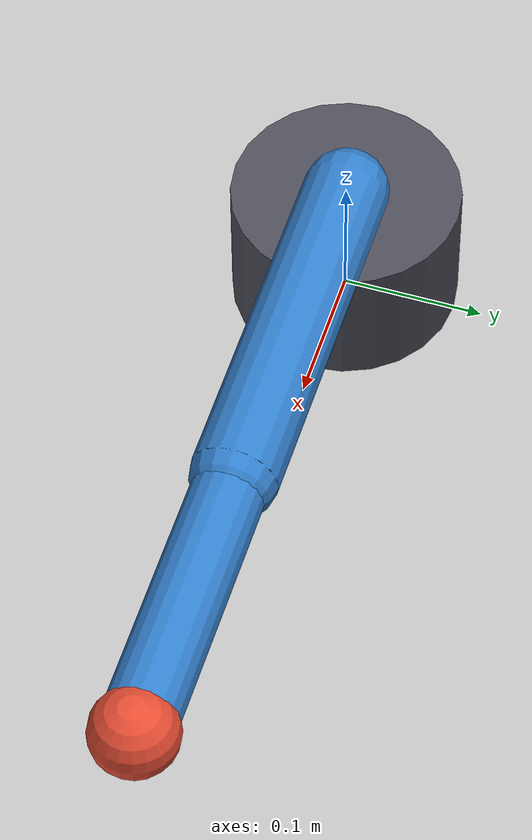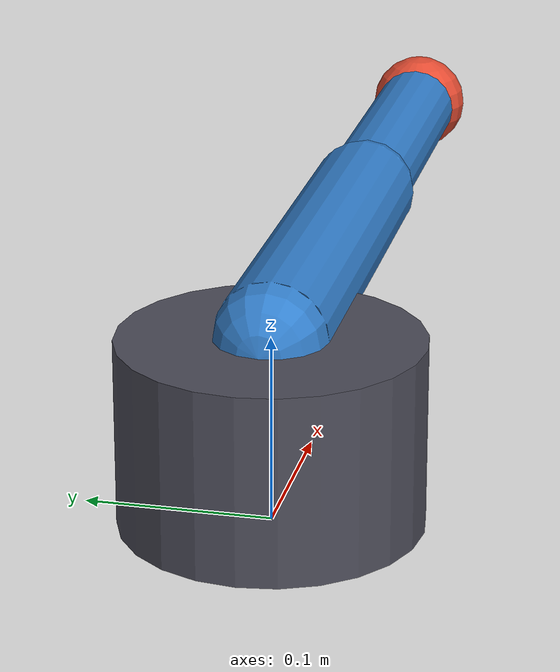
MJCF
<?xml version="1.0" ?>
<!-- Minimal 2-link planar arm. Original open-physical-sim asset (Apache-2.0). -->
<mujoco model="simple_arm">
  <compiler angle="radian" autolimits="true"/>
  <option timestep="0.002" gravity="0 0 -9.81"/>
  <default>
    <joint damping="0.5" armature="0.01"/>
    <geom contype="1" conaffinity="1" rgba="0.2 0.5 0.8 1"/>
    <motor ctrlrange="-2 2" ctrllimited="true"/>
  </default>
  <worldbody>
    <body name="base" pos="0 0 0.05">
      <geom name="base_geom" type="cylinder" size="0.08 0.05" rgba="0.3 0.3 0.35 1"
            mass="1.0"/>
      <body name="link1" pos="0 0 0.05">
        <joint name="shoulder" type="hinge" axis="0 0 1" range="-2.8 2.8"/>
        <geom name="link1_geom" type="capsule" fromto="0 0 0 0.25 0 0" size="0.03"
              mass="0.4"/>
        <body name="link2" pos="0.25 0 0">
          <joint name="elbow" type="hinge" axis="0 0 1" range="-2.5 2.5"/>
          <geom name="link2_geom" type="capsule" fromto="0 0 0 0.2 0 0" size="0.025"
                mass="0.3"/>
          <geom name="ee" type="sphere" pos="0.2 0 0" size="0.03"
                rgba="0.9 0.3 0.2 1" mass="0.05"/>
        </body>
      </body>
    </body>
  </worldbody>
  <actuator>
    <motor name="shoulder_motor" joint="shoulder" gear="1"/>
    <motor name="elbow_motor" joint="elbow" gear="1"/>
  </actuator>
</mujoco>
